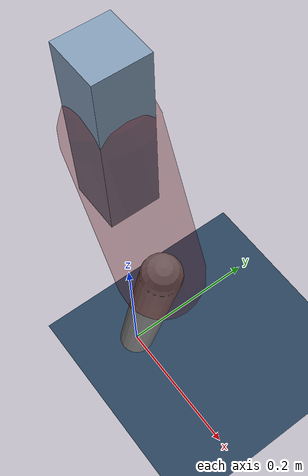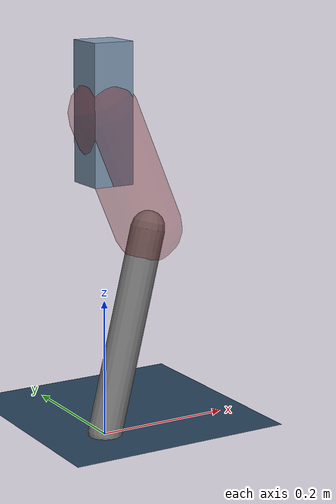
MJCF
<mujoco model="Hopper2D">
	<compiler inertiafromgeom="true" angle="radian" />
	<option timestep="0.001" integrator="implicit" cone="elliptic" solver="Newton" tolerance="1e-10" />

	<default>
		<geom contype="1" conaffinity="1" condim="3" friction="2 0.005 0.0001" solref="0.005 1" />
		<joint limited="true" damping="0.1" />
	</default>

	<asset>
		<texture name="skybox" type="skybox" builtin="gradient" rgb1=".4 .6 .8" rgb2="0 0 0" width="800" height="800" />
		<texture name="grid" type="2d" builtin="checker" rgb1=".1 .2 .3" rgb2=".2 .3 .4" width="300" height="300" mark="edge" markrgb=".2 .3 .4" />
		<material name="ground" texture="grid" texrepeat="1 1" texuniform="true" reflectance="0.1" />
		<material name="leg" rgba="0.5 0.6 0.7 1" />
	</asset>

	<worldbody>

		<geom name="floor" type="plane" size="5 5 0.25" material="ground" />

		<light directional="false" diffuse="0.8 0.8 0.8" specular="0.3 0.3 0.3" pos="0 0 2" dir="0 0 -1" />
		<light mode="targetbodycom" target="base" directional="false" diffuse="0.8 0.8 0.8" specular="0.3 0.3 0.3" pos="0 0 2" dir="0 0 -1" />

		<camera name="fixed" pos="0 -2 1" xyaxes="1 0 0 0 0 1" />
		<camera name="tracking" mode="trackcom" pos="0 -3 1" />

		<body name="root" pos="0 0 0.47253885789308886">
			<joint name="slide_x" type="slide" axis="1 0 0" range="-100 100" />
			<joint name="slide_z" type="slide" axis="0 0 1" range="0 10" />

			<body name="base" pos="0 0 0">
				<geom name="torso" type="box" size="0.03 0.03 0.1" mass="1.9660000000000002" material="leg" />

				<body name="link1" pos="0 0 0" euler="0 1.1717180688061064 0">
					<joint type="hinge" axis="0 -1 0" pos="0 0 0" name="hinge1" limited="true" range="-3.14 3.14" stiffness="0" damping="0.1" />
					<geom name="thigh" type="capsule" fromto="0 0 0 0.1867357456591699 0 0" size="0.05" rgba="0.5 0 0 0.3" mass="0.6969657895820077" />

					<body name="link2" pos="0.1867357456591699 0 0" euler="0 0.6360240457417693 0">
						<joint type="hinge" axis="0 -1 0" pos="0 0 0" name="hinge2" limited="true" range="-3.14 3.14" stiffness="0" damping="0.1" />
						<geom name="shank" type="capsule" fromto="0 0 0 0.3091137026235954 0 0" size="0.025" mass="0.4908023323612359" />

					</body>
				</body>
			</body>
		</body>
	</worldbody>

	<actuator>
		<motor name="torque1" joint="hinge1" ctrlrange="-78.55724292404295 78.55724292404295" ctrllimited="true" gear="1" />
		<motor name="torque2" joint="hinge2" ctrlrange="-32.39319132994998 32.39319132994998" ctrllimited="true" gear="1" />
	</actuator>
</mujoco>
